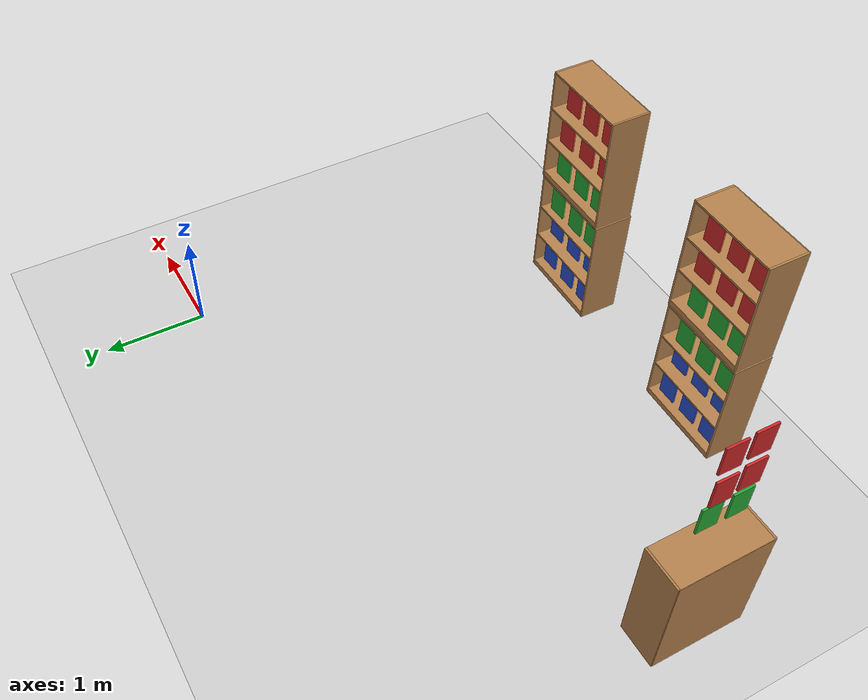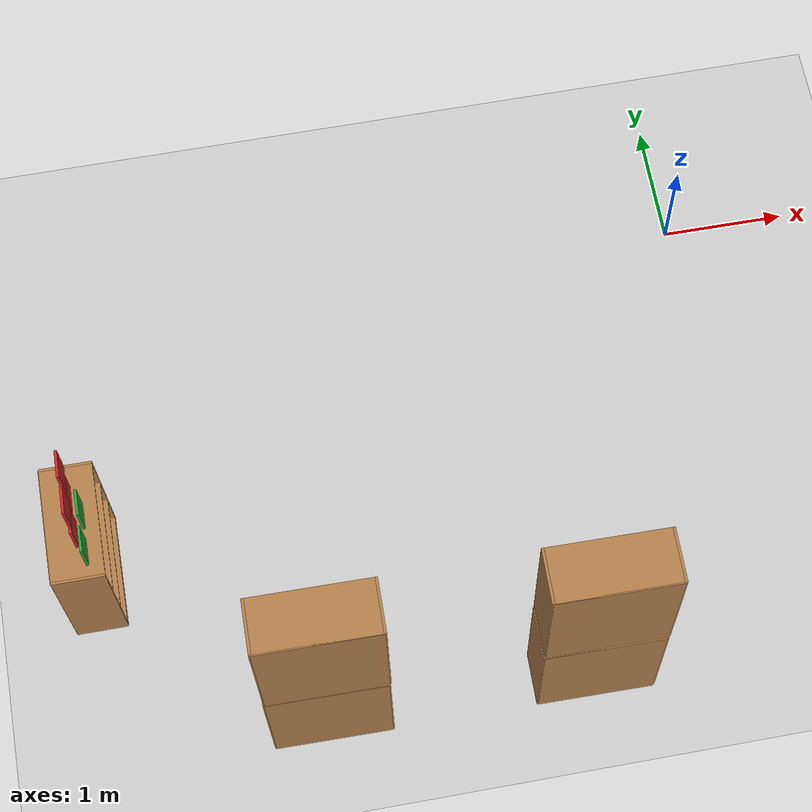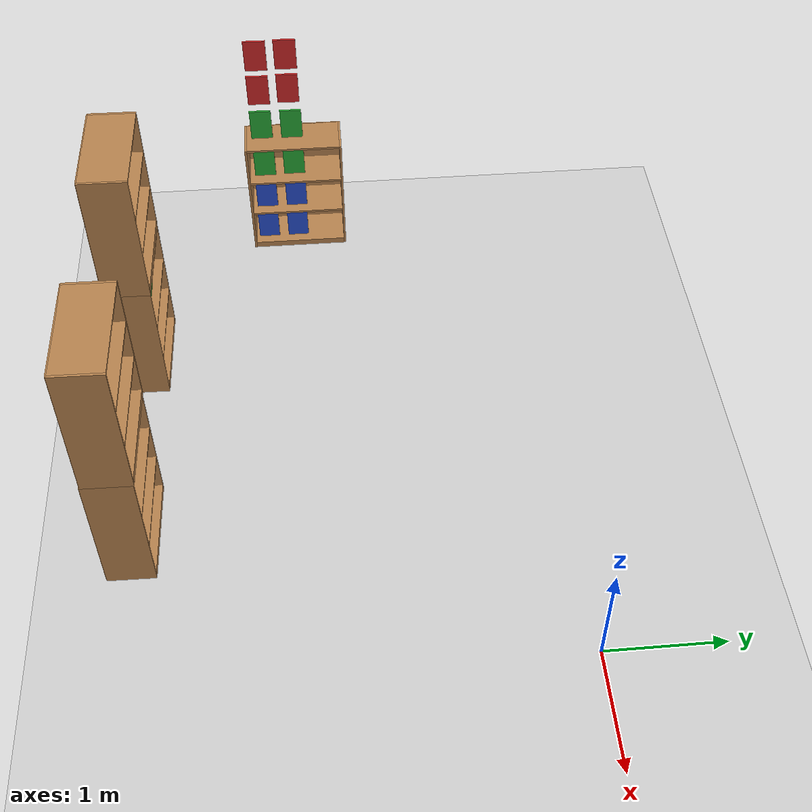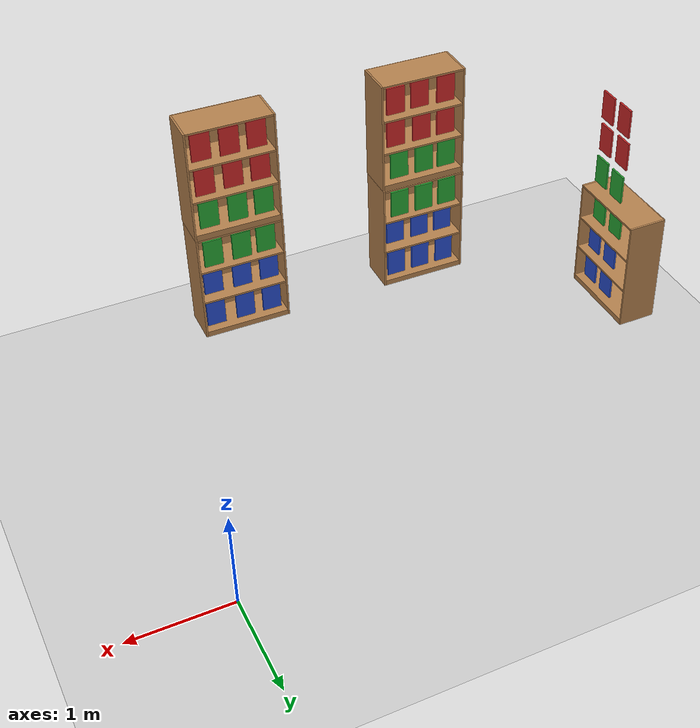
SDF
<sdf version="1.6">
 <world name="default">
  <model name="ground_plane">
   <static>1</static>
   <link name="link">
    <collision name="collision">
     <geometry><plane><normal>0 0 1</normal><size>100 100</size></plane></geometry>
     <surface><friction><ode><mu>100</mu><mu2>50</mu2></ode></friction></surface>
    </collision>
    <visual name="visual">
     <cast_shadows>0</cast_shadows>
     <geometry><plane><normal>0 0 1</normal><size>100 100</size></plane></geometry>
     <material>
      <script><uri>file://media/materials/scripts/gazebo.material</uri><name>Gazebo/Grey</name></script>
     </material>
    </visual>
   </link>
  </model>
  <model name="bookshelf_5_clone_2">
   <static>1</static>
   <link name="link">
    <inertial><mass>1</mass></inertial>
    <collision name="back">
     <pose>0 0.005 0.6 0 -0 0</pose>
     <geometry><box><size>0.9 0.01 1.2</size></box></geometry>
    </collision>
    <visual name="visual1">
     <pose>0 0.005 0.6 0 -0 0</pose>
     <geometry><box><size>0.9 0.01 1.2</size></box></geometry>
     <material>
      <script><uri>file://media/materials/scripts/gazebo.material</uri><name>Gazebo/Wood</name></script>
     </material>
    </visual>
    <collision name="left_side">
     <pose>0.45 -0.195 0.6 0 -0 0</pose>
     <geometry><box><size>0.02 0.4 1.2</size></box></geometry>
    </collision>
    <visual name="visual2">
     <pose>0.45 -0.195 0.6 0 -0 0</pose>
     <geometry><box><size>0.02 0.4 1.2</size></box></geometry>
     <material>
      <script><uri>file://media/materials/scripts/gazebo.material</uri><name>Gazebo/Wood</name></script>
     </material>
    </visual>
    <collision name="right_side">
     <pose>-0.45 -0.195 0.6 0 -0 0</pose>
     <geometry><box><size>0.02 0.4 1.2</size></box></geometry>
    </collision>
    <visual name="visual3">
     <pose>-0.45 -0.195 0.6 0 -0 0</pose>
     <geometry><box><size>0.02 0.4 1.2</size></box></geometry>
     <material>
      <script><uri>file://media/materials/scripts/gazebo.material</uri><name>Gazebo/Wood</name></script>
     </material>
    </visual>
    <collision name="bottom">
     <pose>0 -0.195 0.03 0 -0 0</pose>
     <geometry><box><size>0.88 0.4 0.06</size></box></geometry>
    </collision>
    <visual name="visual4">
     <pose>0 -0.195 0.03 0 -0 0</pose>
     <geometry><box><size>0.88 0.4 0.06</size></box></geometry>
     <material>
      <script><uri>file://media/materials/scripts/gazebo.material</uri><name>Gazebo/Wood</name></script>
     </material>
    </visual>
    <collision name="top">
     <pose>0 -0.195 1.19 0 -0 0</pose>
     <geometry><box><size>0.88 0.4 0.02</size></box></geometry>
    </collision>
    <visual name="visual5">
     <pose>0 -0.195 1.19 0 -0 0</pose>
     <geometry><box><size>0.88 0.4 0.02</size></box></geometry>
     <material>
      <script><uri>file://media/materials/scripts/gazebo.material</uri><name>Gazebo/Wood</name></script>
     </material>
    </visual>
    <collision name="low_shelf">
     <pose>0 -0.195 0.43 0 -0 0</pose>
     <geometry><box><size>0.88 0.4 0.02</size></box></geometry>
    </collision>
    <visual name="visual6">
     <pose>0 -0.195 0.43 0 -0 0</pose>
     <geometry><box><size>0.88 0.4 0.02</size></box></geometry>
     <material>
      <script><uri>file://media/materials/scripts/gazebo.material</uri><name>Gazebo/Wood</name></script>
     </material>
    </visual>
    <collision name="high_shelf">
     <pose>0 -0.195 0.8 0 -0 0</pose>
     <geometry><box><size>0.88 0.4 0.02</size></box></geometry>
    </collision>
    <visual name="visual7">
     <pose>0 -0.195 0.8 0 -0 0</pose>
     <geometry><box><size>0.88 0.4 0.02</size></box></geometry>
     <material>
      <script><uri>file://media/materials/scripts/gazebo.material</uri><name>Gazebo/Wood</name></script>
     </material>
    </visual>
   </link>
   <pose>-1.42311 -3.81825 0 0 -0 3.12955</pose>
  </model>
  <model name="bookshelf_5_clone_5">
   <static>1</static>
   <link name="link">
    <inertial><mass>1</mass></inertial>
    <collision name="back">
     <pose>0 0.005 0.6 0 -0 0</pose>
     <geometry><box><size>0.9 0.01 1.2</size></box></geometry>
    </collision>
    <visual name="visual1">
     <pose>0 0.005 0.6 0 -0 0</pose>
     <geometry><box><size>0.9 0.01 1.2</size></box></geometry>
     <material>
      <script><uri>file://media/materials/scripts/gazebo.material</uri><name>Gazebo/Wood</name></script>
     </material>
    </visual>
    <collision name="left_side">
     <pose>0.45 -0.195 0.6 0 -0 0</pose>
     <geometry><box><size>0.02 0.4 1.2</size></box></geometry>
    </collision>
    <visual name="visual2">
     <pose>0.45 -0.195 0.6 0 -0 0</pose>
     <geometry><box><size>0.02 0.4 1.2</size></box></geometry>
     <material>
      <script><uri>file://media/materials/scripts/gazebo.material</uri><name>Gazebo/Wood</name></script>
     </material>
    </visual>
    <collision name="right_side">
     <pose>-0.45 -0.195 0.6 0 -0 0</pose>
     <geometry><box><size>0.02 0.4 1.2</size></box></geometry>
    </collision>
    <visual name="visual3">
     <pose>-0.45 -0.195 0.6 0 -0 0</pose>
     <geometry><box><size>0.02 0.4 1.2</size></box></geometry>
     <material>
      <script><uri>file://media/materials/scripts/gazebo.material</uri><name>Gazebo/Wood</name></script>
     </material>
    </visual>
    <collision name="bottom">
     <pose>0 -0.195 0.03 0 -0 0</pose>
     <geometry><box><size>0.88 0.4 0.06</size></box></geometry>
    </collision>
    <visual name="visual4">
     <pose>0 -0.195 0.03 0 -0 0</pose>
     <geometry><box><size>0.88 0.4 0.06</size></box></geometry>
     <material>
      <script><uri>file://media/materials/scripts/gazebo.material</uri><name>Gazebo/Wood</name></script>
     </material>
    </visual>
    <collision name="top">
     <pose>0 -0.195 1.19 0 -0 0</pose>
     <geometry><box><size>0.88 0.4 0.02</size></box></geometry>
    </collision>
    <visual name="visual5">
     <pose>0 -0.195 1.19 0 -0 0</pose>
     <geometry><box><size>0.88 0.4 0.02</size></box></geometry>
     <material>
      <script><uri>file://media/materials/scripts/gazebo.material</uri><name>Gazebo/Wood</name></script>
     </material>
    </visual>
    <collision name="low_shelf">
     <pose>0 -0.195 0.43 0 -0 0</pose>
     <geometry><box><size>0.88 0.4 0.02</size></box></geometry>
    </collision>
    <visual name="visual6">
     <pose>0 -0.195 0.43 0 -0 0</pose>
     <geometry><box><size>0.88 0.4 0.02</size></box></geometry>
     <material>
      <script><uri>file://media/materials/scripts/gazebo.material</uri><name>Gazebo/Wood</name></script>
     </material>
    </visual>
    <collision name="high_shelf">
     <pose>0 -0.195 0.8 0 -0 0</pose>
     <geometry><box><size>0.88 0.4 0.02</size></box></geometry>
    </collision>
    <visual name="visual7">
     <pose>0 -0.195 0.8 0 -0 0</pose>
     <geometry><box><size>0.88 0.4 0.02</size></box></geometry>
     <material>
      <script><uri>file://media/materials/scripts/gazebo.material</uri><name>Gazebo/Wood</name></script>
     </material>
    </visual>
   </link>
   <pose>-3.44979 -3.80253 0 0 -0 3.12955</pose>
  </model>
  <model name="bookshelf_5_clone_clone_0">
   <static>1</static>
   <link name="link">
    <inertial><mass>1</mass></inertial>
    <collision name="back">
     <pose>0 0.005 0.6 0 -0 0</pose>
     <geometry><box><size>0.9 0.01 1.2</size></box></geometry>
    </collision>
    <visual name="visual1">
     <pose>0 0.005 0.6 0 -0 0</pose>
     <geometry><box><size>0.9 0.01 1.2</size></box></geometry>
     <material>
      <script><uri>file://media/materials/scripts/gazebo.material</uri><name>Gazebo/Wood</name></script>
     </material>
    </visual>
    <collision name="left_side">
     <pose>0.45 -0.195 0.6 0 -0 0</pose>
     <geometry><box><size>0.02 0.4 1.2</size></box></geometry>
    </collision>
    <visual name="visual2">
     <pose>0.45 -0.195 0.6 0 -0 0</pose>
     <geometry><box><size>0.02 0.4 1.2</size></box></geometry>
     <material>
      <script><uri>file://media/materials/scripts/gazebo.material</uri><name>Gazebo/Wood</name></script>
     </material>
    </visual>
    <collision name="right_side">
     <pose>-0.45 -0.195 0.6 0 -0 0</pose>
     <geometry><box><size>0.02 0.4 1.2</size></box></geometry>
    </collision>
    <visual name="visual3">
     <pose>-0.45 -0.195 0.6 0 -0 0</pose>
     <geometry><box><size>0.02 0.4 1.2</size></box></geometry>
     <material>
      <script><uri>file://media/materials/scripts/gazebo.material</uri><name>Gazebo/Wood</name></script>
     </material>
    </visual>
    <collision name="bottom">
     <pose>0 -0.195 0.03 0 -0 0</pose>
     <geometry><box><size>0.88 0.4 0.06</size></box></geometry>
    </collision>
    <visual name="visual4">
     <pose>0 -0.195 0.03 0 -0 0</pose>
     <geometry><box><size>0.88 0.4 0.06</size></box></geometry>
     <material>
      <script><uri>file://media/materials/scripts/gazebo.material</uri><name>Gazebo/Wood</name></script>
     </material>
    </visual>
    <collision name="top">
     <pose>0 -0.195 1.19 0 -0 0</pose>
     <geometry><box><size>0.88 0.4 0.02</size></box></geometry>
    </collision>
    <visual name="visual5">
     <pose>0 -0.195 1.19 0 -0 0</pose>
     <geometry><box><size>0.88 0.4 0.02</size></box></geometry>
     <material>
      <script><uri>file://media/materials/scripts/gazebo.material</uri><name>Gazebo/Wood</name></script>
     </material>
    </visual>
    <collision name="low_shelf">
     <pose>0 -0.195 0.43 0 -0 0</pose>
     <geometry><box><size>0.88 0.4 0.02</size></box></geometry>
    </collision>
    <visual name="visual6">
     <pose>0 -0.195 0.43 0 -0 0</pose>
     <geometry><box><size>0.88 0.4 0.02</size></box></geometry>
     <material>
      <script><uri>file://media/materials/scripts/gazebo.material</uri><name>Gazebo/Wood</name></script>
     </material>
    </visual>
    <collision name="high_shelf">
     <pose>0 -0.195 0.8 0 -0 0</pose>
     <geometry><box><size>0.88 0.4 0.02</size></box></geometry>
    </collision>
    <visual name="visual7">
     <pose>0 -0.195 0.8 0 -0 0</pose>
     <geometry><box><size>0.88 0.4 0.02</size></box></geometry>
     <material>
      <script><uri>file://media/materials/scripts/gazebo.material</uri><name>Gazebo/Wood</name></script>
     </material>
    </visual>
   </link>
   <pose>-1.41694 -3.81004 1.21139 0 -0 3.12955</pose>
  </model>
  <model name="bookshelf_5_clone_clone_1">
   <static>1</static>
   <link name="link">
    <inertial><mass>1</mass></inertial>
    <collision name="back">
     <pose>0 0.005 0.6 0 -0 0</pose>
     <geometry><box><size>0.9 0.01 1.2</size></box></geometry>
    </collision>
    <visual name="visual1">
     <pose>0 0.005 0.6 0 -0 0</pose>
     <geometry><box><size>0.9 0.01 1.2</size></box></geometry>
     <material>
      <script><uri>file://media/materials/scripts/gazebo.material</uri><name>Gazebo/Wood</name></script>
     </material>
    </visual>
    <collision name="left_side">
     <pose>0.45 -0.195 0.6 0 -0 0</pose>
     <geometry><box><size>0.02 0.4 1.2</size></box></geometry>
    </collision>
    <visual name="visual2">
     <pose>0.45 -0.195 0.6 0 -0 0</pose>
     <geometry><box><size>0.02 0.4 1.2</size></box></geometry>
     <material>
      <script><uri>file://media/materials/scripts/gazebo.material</uri><name>Gazebo/Wood</name></script>
     </material>
    </visual>
    <collision name="right_side">
     <pose>-0.45 -0.195 0.6 0 -0 0</pose>
     <geometry><box><size>0.02 0.4 1.2</size></box></geometry>
    </collision>
    <visual name="visual3">
     <pose>-0.45 -0.195 0.6 0 -0 0</pose>
     <geometry><box><size>0.02 0.4 1.2</size></box></geometry>
     <material>
      <script><uri>file://media/materials/scripts/gazebo.material</uri><name>Gazebo/Wood</name></script>
     </material>
    </visual>
    <collision name="bottom">
     <pose>0 -0.195 0.03 0 -0 0</pose>
     <geometry><box><size>0.88 0.4 0.06</size></box></geometry>
    </collision>
    <visual name="visual4">
     <pose>0 -0.195 0.03 0 -0 0</pose>
     <geometry><box><size>0.88 0.4 0.06</size></box></geometry>
     <material>
      <script><uri>file://media/materials/scripts/gazebo.material</uri><name>Gazebo/Wood</name></script>
     </material>
    </visual>
    <collision name="top">
     <pose>0 -0.195 1.19 0 -0 0</pose>
     <geometry><box><size>0.88 0.4 0.02</size></box></geometry>
    </collision>
    <visual name="visual5">
     <pose>0 -0.195 1.19 0 -0 0</pose>
     <geometry><box><size>0.88 0.4 0.02</size></box></geometry>
     <material>
      <script><uri>file://media/materials/scripts/gazebo.material</uri><name>Gazebo/Wood</name></script>
     </material>
    </visual>
    <collision name="low_shelf">
     <pose>0 -0.195 0.43 0 -0 0</pose>
     <geometry><box><size>0.88 0.4 0.02</size></box></geometry>
    </collision>
    <visual name="visual6">
     <pose>0 -0.195 0.43 0 -0 0</pose>
     <geometry><box><size>0.88 0.4 0.02</size></box></geometry>
     <material>
      <script><uri>file://media/materials/scripts/gazebo.material</uri><name>Gazebo/Wood</name></script>
     </material>
    </visual>
    <collision name="high_shelf">
     <pose>0 -0.195 0.8 0 -0 0</pose>
     <geometry><box><size>0.88 0.4 0.02</size></box></geometry>
    </collision>
    <visual name="visual7">
     <pose>0 -0.195 0.8 0 -0 0</pose>
     <geometry><box><size>0.88 0.4 0.02</size></box></geometry>
     <material>
      <script><uri>file://media/materials/scripts/gazebo.material</uri><name>Gazebo/Wood</name></script>
     </material>
    </visual>
   </link>
   <pose>-3.44383 -3.79926 1.21139 0 -0 3.12955</pose>
  </model>
  <model name="bookshelf_0_clone_0_clone_1">
   <static>1</static>
   <link name="link">
    <inertial><mass>1</mass></inertial>
    <collision name="back">
     <pose>0 0.005 0.6 0 -0 0</pose>
     <geometry><box><size>0.9 0.01 1.2</size></box></geometry>
    </collision>
    <visual name="visual1">
     <pose>0 0.005 0.6 0 -0 0</pose>
     <geometry><box><size>0.9 0.01 1.2</size></box></geometry>
     <material>
      <script><uri>file://media/materials/scripts/gazebo.material</uri><name>Gazebo/Wood</name></script>
     </material>
    </visual>
    <collision name="left_side">
     <pose>0.45 -0.195 0.6 0 -0 0</pose>
     <geometry><box><size>0.02 0.4 1.2</size></box></geometry>
    </collision>
    <visual name="visual2">
     <pose>0.45 -0.195 0.6 0 -0 0</pose>
     <geometry><box><size>0.02 0.4 1.2</size></box></geometry>
     <material>
      <script><uri>file://media/materials/scripts/gazebo.material</uri><name>Gazebo/Wood</name></script>
     </material>
    </visual>
    <collision name="right_side">
     <pose>-0.45 -0.195 0.6 0 -0 0</pose>
     <geometry><box><size>0.02 0.4 1.2</size></box></geometry>
    </collision>
    <visual name="visual3">
     <pose>-0.45 -0.195 0.6 0 -0 0</pose>
     <geometry><box><size>0.02 0.4 1.2</size></box></geometry>
     <material>
      <script><uri>file://media/materials/scripts/gazebo.material</uri><name>Gazebo/Wood</name></script>
     </material>
    </visual>
    <collision name="bottom">
     <pose>0 -0.195 0.03 0 -0 0</pose>
     <geometry><box><size>0.88 0.4 0.06</size></box></geometry>
    </collision>
    <visual name="visual4">
     <pose>0 -0.195 0.03 0 -0 0</pose>
     <geometry><box><size>0.88 0.4 0.06</size></box></geometry>
     <material>
      <script><uri>file://media/materials/scripts/gazebo.material</uri><name>Gazebo/Wood</name></script>
     </material>
    </visual>
    <collision name="top">
     <pose>0 -0.195 1.19 0 -0 0</pose>
     <geometry><box><size>0.88 0.4 0.02</size></box></geometry>
    </collision>
    <visual name="visual5">
     <pose>0 -0.195 1.19 0 -0 0</pose>
     <geometry><box><size>0.88 0.4 0.02</size></box></geometry>
     <material>
      <script><uri>file://media/materials/scripts/gazebo.material</uri><name>Gazebo/Wood</name></script>
     </material>
    </visual>
    <collision name="low_shelf">
     <pose>0 -0.195 0.43 0 -0 0</pose>
     <geometry><box><size>0.88 0.4 0.02</size></box></geometry>
    </collision>
    <visual name="visual6">
     <pose>0 -0.195 0.43 0 -0 0</pose>
     <geometry><box><size>0.88 0.4 0.02</size></box></geometry>
     <material>
      <script><uri>file://media/materials/scripts/gazebo.material</uri><name>Gazebo/Wood</name></script>
     </material>
    </visual>
    <collision name="high_shelf">
     <pose>0 -0.195 0.8 0 -0 0</pose>
     <geometry><box><size>0.88 0.4 0.02</size></box></geometry>
    </collision>
    <visual name="visual7">
     <pose>0 -0.195 0.8 0 -0 0</pose>
     <geometry><box><size>0.88 0.4 0.02</size></box></geometry>
     <material>
      <script><uri>file://media/materials/scripts/gazebo.material</uri><name>Gazebo/Wood</name></script>
     </material>
    </visual>
   </link>
   <pose>-5.28921 -2.17241 0 0 -0 1.5697</pose>
  </model>
  <model name="bluecube_0_clone_clone_10_clone_clone_15">
   <static>1</static>
   <link name="link">
    <pose>0 0 0.21 0 -0 0</pose>
    <collision name="collision"><geometry><box><size>0.2 0.02 0.3</size></box></geometry></collision>
    <visual name="visual">
     <geometry><box><size>0.2 0.02 0.3</size></box></geometry>
     <material>
      <script><uri>file://media/materials/scripts/gazebo.material</uri><name>Gazebo/Blue</name></script>
     </material>
    </visual>
   </link>
   <pose>-1.1296 -3.5647 0.38097 0 -0 0</pose>
  </model>
  <model name="bluecube_0_clone_clone_10_clone_clone_16">
   <static>1</static>
   <link name="link">
    <pose>0 0 0.21 0 -0 0</pose>
    <collision name="collision"><geometry><box><size>0.2 0.02 0.3</size></box></geometry></collision>
    <visual name="visual">
     <geometry><box><size>0.2 0.02 0.3</size></box></geometry>
     <material>
      <script><uri>file://media/materials/scripts/gazebo.material</uri><name>Gazebo/Blue</name></script>
     </material>
    </visual>
   </link>
   <pose>-1.43859 -3.55571 0.38097 0 -0 0</pose>
  </model>
  <model name="bluecube_0_clone_clone_10_clone_clone_17">
   <static>1</static>
   <link name="link">
    <pose>0 0 0.21 0 -0 0</pose>
    <collision name="collision"><geometry><box><size>0.2 0.02 0.3</size></box></geometry></collision>
    <visual name="visual">
     <geometry><box><size>0.2 0.02 0.3</size></box></geometry>
     <material>
      <script><uri>file://media/materials/scripts/gazebo.material</uri><name>Gazebo/Blue</name></script>
     </material>
    </visual>
   </link>
   <pose>-1.73228 -3.55484 0.38097 0 -0 0</pose>
  </model>
  <model name="bluecube_0_clone_clone_10_clone_clone_18">
   <static>1</static>
   <link name="link">
    <pose>0 0 0.21 0 -0 0</pose>
    <collision name="collision"><geometry><box><size>0.2 0.02 0.3</size></box></geometry></collision>
    <visual name="visual">
     <geometry><box><size>0.2 0.02 0.3</size></box></geometry>
     <material>
      <script><uri>file://media/materials/scripts/gazebo.material</uri><name>Gazebo/Blue</name></script>
     </material>
    </visual>
   </link>
   <pose>-3.17794 -3.55402 0.38097 0 -0 0</pose>
  </model>
  <model name="bluecube_0_clone_clone_10_clone_clone_19">
   <static>1</static>
   <link name="link">
    <pose>0 0 0.21 0 -0 0</pose>
    <collision name="collision"><geometry><box><size>0.2 0.02 0.3</size></box></geometry></collision>
    <visual name="visual">
     <geometry><box><size>0.2 0.02 0.3</size></box></geometry>
     <material>
      <script><uri>file://media/materials/scripts/gazebo.material</uri><name>Gazebo/Blue</name></script>
     </material>
    </visual>
   </link>
   <pose>-3.46702 -3.55548 0.38097 0 -0 0</pose>
  </model>
  <model name="bluecube_0_clone_clone_10_clone_clone_20">
   <static>1</static>
   <link name="link">
    <pose>0 0 0.21 0 -0 0</pose>
    <collision name="collision"><geometry><box><size>0.2 0.02 0.3</size></box></geometry></collision>
    <visual name="visual">
     <geometry><box><size>0.2 0.02 0.3</size></box></geometry>
     <material>
      <script><uri>file://media/materials/scripts/gazebo.material</uri><name>Gazebo/Blue</name></script>
     </material>
    </visual>
   </link>
   <pose>-3.74107 -3.55512 0.38097 0 -0 0</pose>
  </model>
  <model name="bluecube_0_clone_clone_9_clone_5">
   <static>1</static>
   <link name="link">
    <pose>0 0 0.21 0 -0 0</pose>
    <collision name="collision"><geometry><box><size>0.2 0.02 0.3</size></box></geometry></collision>
    <visual name="visual">
     <geometry><box><size>0.2 0.02 0.3</size></box></geometry>
     <material>
      <script><uri>file://media/materials/scripts/gazebo.material</uri><name>Gazebo/Blue</name></script>
     </material>
    </visual>
   </link>
   <pose>-1.1157 -3.53551 0 0 -0 0</pose>
  </model>
  <model name="bluecube_0_clone_clone_9_clone_6">
   <static>1</static>
   <link name="link">
    <pose>0 0 0.21 0 -0 0</pose>
    <collision name="collision"><geometry><box><size>0.2 0.02 0.3</size></box></geometry></collision>
    <visual name="visual">
     <geometry><box><size>0.2 0.02 0.3</size></box></geometry>
     <material>
      <script><uri>file://media/materials/scripts/gazebo.material</uri><name>Gazebo/Blue</name></script>
     </material>
    </visual>
   </link>
   <pose>-1.43448 -3.52715 0 0 -0 0</pose>
  </model>
  <model name="bluecube_0_clone_clone_9_clone_7">
   <static>1</static>
   <link name="link">
    <pose>0 0 0.21 0 -0 0</pose>
    <collision name="collision"><geometry><box><size>0.2 0.02 0.3</size></box></geometry></collision>
    <visual name="visual">
     <geometry><box><size>0.2 0.02 0.3</size></box></geometry>
     <material>
      <script><uri>file://media/materials/scripts/gazebo.material</uri><name>Gazebo/Blue</name></script>
     </material>
    </visual>
   </link>
   <pose>-1.72594 -3.52575 0 0 -0 0</pose>
  </model>
  <model name="bluecube_0_clone_clone_9_clone_8">
   <static>1</static>
   <link name="link">
    <pose>0 0 0.21 0 -0 0</pose>
    <collision name="collision"><geometry><box><size>0.2 0.02 0.3</size></box></geometry></collision>
    <visual name="visual">
     <geometry><box><size>0.2 0.02 0.3</size></box></geometry>
     <material>
      <script><uri>file://media/materials/scripts/gazebo.material</uri><name>Gazebo/Blue</name></script>
     </material>
    </visual>
   </link>
   <pose>-3.16538 -3.50622 0 0 -0 0</pose>
  </model>
  <model name="bluecube_0_clone_clone_9_clone_9">
   <static>1</static>
   <link name="link">
    <pose>0 0 0.21 0 -0 0</pose>
    <collision name="collision"><geometry><box><size>0.2 0.02 0.3</size></box></geometry></collision>
    <visual name="visual">
     <geometry><box><size>0.2 0.02 0.3</size></box></geometry>
     <material>
      <script><uri>file://media/materials/scripts/gazebo.material</uri><name>Gazebo/Blue</name></script>
     </material>
    </visual>
   </link>
   <pose>-3.4557 -3.5122 0 0 -0 0</pose>
  </model>
  <model name="bluecube_0_clone_clone_9_clone_10">
   <static>1</static>
   <link name="link">
    <pose>0 0 0.21 0 -0 0</pose>
    <collision name="collision"><geometry><box><size>0.2 0.02 0.3</size></box></geometry></collision>
    <visual name="visual">
     <geometry><box><size>0.2 0.02 0.3</size></box></geometry>
     <material>
      <script><uri>file://media/materials/scripts/gazebo.material</uri><name>Gazebo/Blue</name></script>
     </material>
    </visual>
   </link>
   <pose>-3.73936 -3.51065 0 0 -0 0</pose>
  </model>
  <model name="bluecube_0_clone_clone_9_clone_11_clone_clone_9">
   <static>1</static>
   <link name="link">
    <pose>0 0 0.21 0 -0 0</pose>
    <collision name="collision"><geometry><box><size>0.2 0.02 0.3</size></box></geometry></collision>
    <visual name="visual">
     <geometry><box><size>0.2 0.02 0.3</size></box></geometry>
     <material>
      <script><uri>file://media/materials/scripts/gazebo.material</uri><name>Gazebo/Blue</name></script>
     </material>
    </visual>
   </link>
   <pose>-5.0005 -2.4781 0 0 -0 1.57146</pose>
  </model>
  <model name="bluecube_0_clone_clone_9_clone_11_clone_clone_10">
   <static>1</static>
   <link name="link">
    <pose>0 0 0.21 0 -0 0</pose>
    <collision name="collision"><geometry><box><size>0.2 0.02 0.3</size></box></geometry></collision>
    <visual name="visual">
     <geometry><box><size>0.2 0.02 0.3</size></box></geometry>
     <material>
      <script><uri>file://media/materials/scripts/gazebo.material</uri><name>Gazebo/Blue</name></script>
     </material>
    </visual>
   </link>
   <pose>-5.00143 -2.18751 0 0 -0 1.57146</pose>
  </model>
  <model name="bluecube_0_clone_clone_10_clone_clone_21_clone_clone_10">
   <static>1</static>
   <link name="link">
    <pose>0 0 0.21 0 -0 0</pose>
    <collision name="collision"><geometry><box><size>0.2 0.02 0.3</size></box></geometry></collision>
    <visual name="visual">
     <geometry><box><size>0.2 0.02 0.3</size></box></geometry>
     <material>
      <script><uri>file://media/materials/scripts/gazebo.material</uri><name>Gazebo/Blue</name></script>
     </material>
    </visual>
   </link>
   <pose>-5.00823 -2.46789 0.38097 0 -0 1.5507</pose>
  </model>
  <model name="bluecube_0_clone_clone_10_clone_clone_21_clone_clone_11">
   <static>1</static>
   <link name="link">
    <pose>0 0 0.21 0 -0 0</pose>
    <collision name="collision"><geometry><box><size>0.2 0.02 0.3</size></box></geometry></collision>
    <visual name="visual">
     <geometry><box><size>0.2 0.02 0.3</size></box></geometry>
     <material>
      <script><uri>file://media/materials/scripts/gazebo.material</uri><name>Gazebo/Blue</name></script>
     </material>
    </visual>
   </link>
   <pose>-5.00876 -2.17917 0.38097 0 -0 1.5507</pose>
  </model>
  <model name="greencube_clone_clone_16">
   <static>1</static>
   <link name="link">
    <pose>0 0 0.21 0 -0 0</pose>
    <collision name="collision"><geometry><box><size>0.2 0.02 0.3</size></box></geometry></collision>
    <visual name="visual">
     <geometry><box><size>0.2 0.02 0.3</size></box></geometry>
     <material>
      <script><uri>file://media/materials/scripts/gazebo.material</uri><name>Gazebo/Green</name></script>
     </material>
    </visual>
   </link>
   <pose>-1.14772 -3.51393 0.751098 0 -0 0</pose>
  </model>
  <model name="greencube_clone_clone_17">
   <static>1</static>
   <link name="link">
    <pose>0 0 0.21 0 -0 0</pose>
    <collision name="collision"><geometry><box><size>0.2 0.02 0.3</size></box></geometry></collision>
    <visual name="visual">
     <geometry><box><size>0.2 0.02 0.3</size></box></geometry>
     <material>
      <script><uri>file://media/materials/scripts/gazebo.material</uri><name>Gazebo/Green</name></script>
     </material>
    </visual>
   </link>
   <pose>-1.45027 -3.51747 0.751098 0 -0 0</pose>
  </model>
  <model name="greencube_clone_clone_19">
   <static>1</static>
   <link name="link">
    <pose>0 0 0.21 0 -0 0</pose>
    <collision name="collision"><geometry><box><size>0.2 0.02 0.3</size></box></geometry></collision>
    <visual name="visual">
     <geometry><box><size>0.2 0.02 0.3</size></box></geometry>
     <material>
      <script><uri>file://media/materials/scripts/gazebo.material</uri><name>Gazebo/Green</name></script>
     </material>
    </visual>
   </link>
   <pose>-3.20782 -3.49524 0.751098 0 -0 0</pose>
  </model>
  <model name="greencube_clone_clone_20">
   <static>1</static>
   <link name="link">
    <pose>0 0 0.21 0 -0 0</pose>
    <collision name="collision"><geometry><box><size>0.2 0.02 0.3</size></box></geometry></collision>
    <visual name="visual">
     <geometry><box><size>0.2 0.02 0.3</size></box></geometry>
     <material>
      <script><uri>file://media/materials/scripts/gazebo.material</uri><name>Gazebo/Green</name></script>
     </material>
    </visual>
   </link>
   <pose>-3.48798 -3.49201 0.751098 0 -0 0</pose>
  </model>
  <model name="greencube_clone_clone_21">
   <static>1</static>
   <link name="link">
    <pose>0 0 0.21 0 -0 0</pose>
    <collision name="collision"><geometry><box><size>0.2 0.02 0.3</size></box></geometry></collision>
    <visual name="visual">
     <geometry><box><size>0.2 0.02 0.3</size></box></geometry>
     <material>
      <script><uri>file://media/materials/scripts/gazebo.material</uri><name>Gazebo/Green</name></script>
     </material>
    </visual>
   </link>
   <pose>-3.75667 -3.49433 0.751098 0 -0 0</pose>
  </model>
  <model name="greencube_clone_clone_18">
   <static>1</static>
   <link name="link">
    <pose>0 0 0.21 0 -0 0</pose>
    <collision name="collision"><geometry><box><size>0.2 0.02 0.3</size></box></geometry></collision>
    <visual name="visual">
     <geometry><box><size>0.2 0.02 0.3</size></box></geometry>
     <material>
      <script><uri>file://media/materials/scripts/gazebo.material</uri><name>Gazebo/Green</name></script>
     </material>
    </visual>
   </link>
   <pose>-1.71309 -3.52416 0.751098 0 -0 0</pose>
  </model>
  <model name="greencube_clone_clone_22_clone_clone_10">
   <static>1</static>
   <link name="link">
    <pose>0 0 0.21 0 -0 0</pose>
    <collision name="collision"><geometry><box><size>0.2 0.02 0.3</size></box></geometry></collision>
    <visual name="visual">
     <geometry><box><size>0.2 0.02 0.3</size></box></geometry>
     <material>
      <script><uri>file://media/materials/scripts/gazebo.material</uri><name>Gazebo/Green</name></script>
     </material>
    </visual>
   </link>
   <pose>-5.02813 -2.46012 0.751098 0 -0 1.56837</pose>
  </model>
  <model name="greencube_clone_clone_22_clone_clone_11">
   <static>1</static>
   <link name="link">
    <pose>0 0 0.21 0 -0 0</pose>
    <collision name="collision"><geometry><box><size>0.2 0.02 0.3</size></box></geometry></collision>
    <visual name="visual">
     <geometry><box><size>0.2 0.02 0.3</size></box></geometry>
     <material>
      <script><uri>file://media/materials/scripts/gazebo.material</uri><name>Gazebo/Green</name></script>
     </material>
    </visual>
   </link>
   <pose>-5.03599 -2.17773 0.751098 0 -0 1.56837</pose>
  </model>
  <model name="greencube_clone_clone_0_clone_clone_clone_16">
   <static>1</static>
   <link name="link">
    <pose>0 0 0.21 0 -0 0</pose>
    <collision name="collision"><geometry><box><size>0.2 0.02 0.3</size></box></geometry></collision>
    <visual name="visual">
     <geometry><box><size>0.2 0.02 0.3</size></box></geometry>
     <material>
      <script><uri>file://media/materials/scripts/gazebo.material</uri><name>Gazebo/Green</name></script>
     </material>
    </visual>
   </link>
   <pose>-1.14978 -3.52479 1.20525 0 -0 0</pose>
  </model>
  <model name="greencube_clone_clone_0_clone_clone_clone_17">
   <static>1</static>
   <link name="link">
    <pose>0 0 0.21 0 -0 0</pose>
    <collision name="collision"><geometry><box><size>0.2 0.02 0.3</size></box></geometry></collision>
    <visual name="visual">
     <geometry><box><size>0.2 0.02 0.3</size></box></geometry>
     <material>
      <script><uri>file://media/materials/scripts/gazebo.material</uri><name>Gazebo/Green</name></script>
     </material>
    </visual>
   </link>
   <pose>-1.44841 -3.52028 1.20525 0 -0 0</pose>
  </model>
  <model name="greencube_clone_clone_0_clone_clone_clone_18">
   <static>1</static>
   <link name="link">
    <pose>0 0 0.21 0 -0 0</pose>
    <collision name="collision"><geometry><box><size>0.2 0.02 0.3</size></box></geometry></collision>
    <visual name="visual">
     <geometry><box><size>0.2 0.02 0.3</size></box></geometry>
     <material>
      <script><uri>file://media/materials/scripts/gazebo.material</uri><name>Gazebo/Green</name></script>
     </material>
    </visual>
   </link>
   <pose>-1.72546 -3.52175 1.20525 0 -0 0</pose>
  </model>
  <model name="greencube_clone_clone_0_clone_clone_clone_19">
   <static>1</static>
   <link name="link">
    <pose>0 0 0.21 0 -0 0</pose>
    <collision name="collision"><geometry><box><size>0.2 0.02 0.3</size></box></geometry></collision>
    <visual name="visual">
     <geometry><box><size>0.2 0.02 0.3</size></box></geometry>
     <material>
      <script><uri>file://media/materials/scripts/gazebo.material</uri><name>Gazebo/Green</name></script>
     </material>
    </visual>
   </link>
   <pose>-3.21337 -3.51387 1.20525 0 -0 0</pose>
  </model>
  <model name="greencube_clone_clone_0_clone_clone_clone_20">
   <static>1</static>
   <link name="link">
    <pose>0 0 0.21 0 -0 0</pose>
    <collision name="collision"><geometry><box><size>0.2 0.02 0.3</size></box></geometry></collision>
    <visual name="visual">
     <geometry><box><size>0.2 0.02 0.3</size></box></geometry>
     <material>
      <script><uri>file://media/materials/scripts/gazebo.material</uri><name>Gazebo/Green</name></script>
     </material>
    </visual>
   </link>
   <pose>-3.49563 -3.50923 1.20525 0 -0 0</pose>
  </model>
  <model name="greencube_clone_clone_0_clone_clone_clone_21">
   <static>1</static>
   <link name="link">
    <pose>0 0 0.21 0 -0 0</pose>
    <collision name="collision"><geometry><box><size>0.2 0.02 0.3</size></box></geometry></collision>
    <visual name="visual">
     <geometry><box><size>0.2 0.02 0.3</size></box></geometry>
     <material>
      <script><uri>file://media/materials/scripts/gazebo.material</uri><name>Gazebo/Green</name></script>
     </material>
    </visual>
   </link>
   <pose>-3.75223 -3.51006 1.20525 0 -0 0</pose>
  </model>
  <model name="greencube_clone_clone_22_clone_clone_10_clone_clone">
   <static>1</static>
   <link name="link">
    <pose>0 0 0.21 0 -0 0</pose>
    <collision name="collision"><geometry><box><size>0.2 0.02 0.3</size></box></geometry></collision>
    <visual name="visual">
     <geometry><box><size>0.2 0.02 0.3</size></box></geometry>
     <material>
      <script><uri>file://media/materials/scripts/gazebo.material</uri><name>Gazebo/Green</name></script>
     </material>
    </visual>
   </link>
   <pose>-4.99763 -2.17381 1.21098 0 -0 1.56837</pose>
  </model>
  <model name="greencube_clone_clone_22_clone_clone_10_clone_clone_clone">
   <static>1</static>
   <link name="link">
    <pose>0 0 0.21 0 -0 0</pose>
    <collision name="collision"><geometry><box><size>0.2 0.02 0.3</size></box></geometry></collision>
    <visual name="visual">
     <geometry><box><size>0.2 0.02 0.3</size></box></geometry>
     <material>
      <script><uri>file://media/materials/scripts/gazebo.material</uri><name>Gazebo/Green</name></script>
     </material>
    </visual>
   </link>
   <pose>-5.00313 -2.45708 1.21098 0 -0 1.56837</pose>
  </model>
  <model name="redcube_clone_clone_16">
   <static>1</static>
   <link name="link">
    <pose>0 0 0.21 0 -0 0</pose>
    <collision name="collision"><geometry><box><size>0.2 0.02 0.3</size></box></geometry></collision>
    <visual name="visual">
     <geometry><box><size>0.2 0.02 0.3</size></box></geometry>
     <material>
      <script><uri>file://media/materials/scripts/gazebo.material</uri><name>Gazebo/Red</name></script>
     </material>
    </visual>
   </link>
   <pose>-1.1414 -3.52272 1.58534 0 -0 0</pose>
  </model>
  <model name="redcube_clone_clone_17">
   <static>1</static>
   <link name="link">
    <pose>0 0 0.21 0 -0 0</pose>
    <collision name="collision"><geometry><box><size>0.2 0.02 0.3</size></box></geometry></collision>
    <visual name="visual">
     <geometry><box><size>0.2 0.02 0.3</size></box></geometry>
     <material>
      <script><uri>file://media/materials/scripts/gazebo.material</uri><name>Gazebo/Red</name></script>
     </material>
    </visual>
   </link>
   <pose>-1.43759 -3.53848 1.58534 0 -0 0</pose>
  </model>
  <model name="redcube_clone_clone_18">
   <static>1</static>
   <link name="link">
    <pose>0 0 0.21 0 -0 0</pose>
    <collision name="collision"><geometry><box><size>0.2 0.02 0.3</size></box></geometry></collision>
    <visual name="visual">
     <geometry><box><size>0.2 0.02 0.3</size></box></geometry>
     <material>
      <script><uri>file://media/materials/scripts/gazebo.material</uri><name>Gazebo/Red</name></script>
     </material>
    </visual>
   </link>
   <pose>-1.72407 -3.54618 1.58534 0 -0 0</pose>
  </model>
  <model name="redcube_clone_clone_19">
   <static>1</static>
   <link name="link">
    <pose>0 0 0.21 0 -0 0</pose>
    <collision name="collision"><geometry><box><size>0.2 0.02 0.3</size></box></geometry></collision>
    <visual name="visual">
     <geometry><box><size>0.2 0.02 0.3</size></box></geometry>
     <material>
      <script><uri>file://media/materials/scripts/gazebo.material</uri><name>Gazebo/Red</name></script>
     </material>
    </visual>
   </link>
   <pose>-3.17903 -3.52071 1.58534 0 -0 0</pose>
  </model>
  <model name="redcube_clone_clone_20">
   <static>1</static>
   <link name="link">
    <pose>0 0 0.21 0 -0 0</pose>
    <collision name="collision"><geometry><box><size>0.2 0.02 0.3</size></box></geometry></collision>
    <visual name="visual">
     <geometry><box><size>0.2 0.02 0.3</size></box></geometry>
     <material>
      <script><uri>file://media/materials/scripts/gazebo.material</uri><name>Gazebo/Red</name></script>
     </material>
    </visual>
   </link>
   <pose>-3.47029 -3.52023 1.58534 0 -0 0</pose>
  </model>
  <model name="redcube_clone_clone_21">
   <static>1</static>
   <link name="link">
    <pose>0 0 0.21 0 -0 0</pose>
    <collision name="collision"><geometry><box><size>0.2 0.02 0.3</size></box></geometry></collision>
    <visual name="visual">
     <geometry><box><size>0.2 0.02 0.3</size></box></geometry>
     <material>
      <script><uri>file://media/materials/scripts/gazebo.material</uri><name>Gazebo/Red</name></script>
     </material>
    </visual>
   </link>
   <pose>-3.74475 -3.51978 1.58534 0 -0 0</pose>
  </model>
  <model name="redcube_clone_clone_22_clone">
   <static>1</static>
   <link name="link">
    <pose>0 0 0.21 0 -0 0</pose>
    <collision name="collision"><geometry><box><size>0.2 0.02 0.3</size></box></geometry></collision>
    <visual name="visual">
     <geometry><box><size>0.2 0.02 0.3</size></box></geometry>
     <material>
      <script><uri>file://media/materials/scripts/gazebo.material</uri><name>Gazebo/Red</name></script>
     </material>
    </visual>
   </link>
   <pose>-5.02728 -2.18168 1.58534 0 -0 1.55372</pose>
  </model>
  <model name="redcube_clone_clone_22_clone_clone">
   <static>1</static>
   <link name="link">
    <pose>0 0 0.21 0 -0 0</pose>
    <collision name="collision"><geometry><box><size>0.2 0.02 0.3</size></box></geometry></collision>
    <visual name="visual">
     <geometry><box><size>0.2 0.02 0.3</size></box></geometry>
     <material>
      <script><uri>file://media/materials/scripts/gazebo.material</uri><name>Gazebo/Red</name></script>
     </material>
    </visual>
   </link>
   <pose>-5.01335 -2.45368 1.58534 0 -0 1.55372</pose>
  </model>
  <model name="redcube_clone_clone_22_clone_clone_22_clone_clone_10">
   <static>1</static>
   <link name="link">
    <pose>0 0 0.21 0 -0 0</pose>
    <collision name="collision"><geometry><box><size>0.2 0.02 0.3</size></box></geometry></collision>
    <visual name="visual">
     <geometry><box><size>0.2 0.02 0.3</size></box></geometry>
     <material>
      <script><uri>file://media/materials/scripts/gazebo.material</uri><name>Gazebo/Red</name></script>
     </material>
    </visual>
   </link>
   <pose>-5.00031 -2.44874 1.95914 0 -0 1.55372</pose>
  </model>
  <model name="redcube_clone_clone_22_clone_clone_22_clone_clone_11">
   <static>1</static>
   <link name="link">
    <pose>0 0 0.21 0 -0 0</pose>
    <collision name="collision"><geometry><box><size>0.2 0.02 0.3</size></box></geometry></collision>
    <visual name="visual">
     <geometry><box><size>0.2 0.02 0.3</size></box></geometry>
     <material>
      <script><uri>file://media/materials/scripts/gazebo.material</uri><name>Gazebo/Red</name></script>
     </material>
    </visual>
   </link>
   <pose>-5.00807 -2.17908 1.95914 0 -0 1.55372</pose>
  </model>
  <model name="redcube_clone_clone_clone_clone_clone_16">
   <static>1</static>
   <link name="link">
    <pose>0 0 0.21 0 -0 0</pose>
    <collision name="collision"><geometry><box><size>0.2 0.02 0.3</size></box></geometry></collision>
    <visual name="visual">
     <geometry><box><size>0.2 0.02 0.3</size></box></geometry>
     <material>
      <script><uri>file://media/materials/scripts/gazebo.material</uri><name>Gazebo/Red</name></script>
     </material>
    </visual>
   </link>
   <pose>-1.1444 -3.5483 1.95637 0 -0 0</pose>
  </model>
  <model name="redcube_clone_clone_clone_clone_clone_17">
   <static>1</static>
   <link name="link">
    <pose>0 0 0.21 0 -0 0</pose>
    <collision name="collision"><geometry><box><size>0.2 0.02 0.3</size></box></geometry></collision>
    <visual name="visual">
     <geometry><box><size>0.2 0.02 0.3</size></box></geometry>
     <material>
      <script><uri>file://media/materials/scripts/gazebo.material</uri><name>Gazebo/Red</name></script>
     </material>
    </visual>
   </link>
   <pose>-1.43018 -3.53746 1.95637 0 -0 0</pose>
  </model>
  <model name="redcube_clone_clone_clone_clone_clone_18">
   <static>1</static>
   <link name="link">
    <pose>0 0 0.21 0 -0 0</pose>
    <collision name="collision"><geometry><box><size>0.2 0.02 0.3</size></box></geometry></collision>
    <visual name="visual">
     <geometry><box><size>0.2 0.02 0.3</size></box></geometry>
     <material>
      <script><uri>file://media/materials/scripts/gazebo.material</uri><name>Gazebo/Red</name></script>
     </material>
    </visual>
   </link>
   <pose>-1.71091 -3.54395 1.95637 0 -0 0</pose>
  </model>
  <model name="redcube_clone_clone_clone_clone_clone_19">
   <static>1</static>
   <link name="link">
    <pose>0 0 0.21 0 -0 0</pose>
    <collision name="collision"><geometry><box><size>0.2 0.02 0.3</size></box></geometry></collision>
    <visual name="visual">
     <geometry><box><size>0.2 0.02 0.3</size></box></geometry>
     <material>
      <script><uri>file://media/materials/scripts/gazebo.material</uri><name>Gazebo/Red</name></script>
     </material>
    </visual>
   </link>
   <pose>-3.18168 -3.52309 1.95637 0 -0 0</pose>
  </model>
  <model name="redcube_clone_clone_clone_clone_clone_21">
   <static>1</static>
   <link name="link">
    <pose>0 0 0.21 0 -0 0</pose>
    <collision name="collision"><geometry><box><size>0.2 0.02 0.3</size></box></geometry></collision>
    <visual name="visual">
     <geometry><box><size>0.2 0.02 0.3</size></box></geometry>
     <material>
      <script><uri>file://media/materials/scripts/gazebo.material</uri><name>Gazebo/Red</name></script>
     </material>
    </visual>
   </link>
   <pose>-3.74451 -3.52575 1.95637 0 -0 0</pose>
  </model>
  <model name="redcube_clone_clone_clone_clone_clone_20">
   <static>1</static>
   <link name="link">
    <pose>0 0 0.21 0 -0 0</pose>
    <collision name="collision"><geometry><box><size>0.2 0.02 0.3</size></box></geometry></collision>
    <visual name="visual">
     <geometry><box><size>0.2 0.02 0.3</size></box></geometry>
     <material>
      <script><uri>file://media/materials/scripts/gazebo.material</uri><name>Gazebo/Red</name></script>
     </material>
    </visual>
   </link>
   <pose>-3.45873 -3.54233 1.95637 0 -0 0</pose>
  </model>
 </world>
</sdf>
